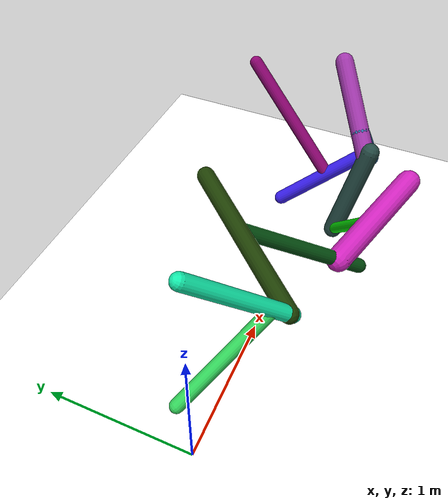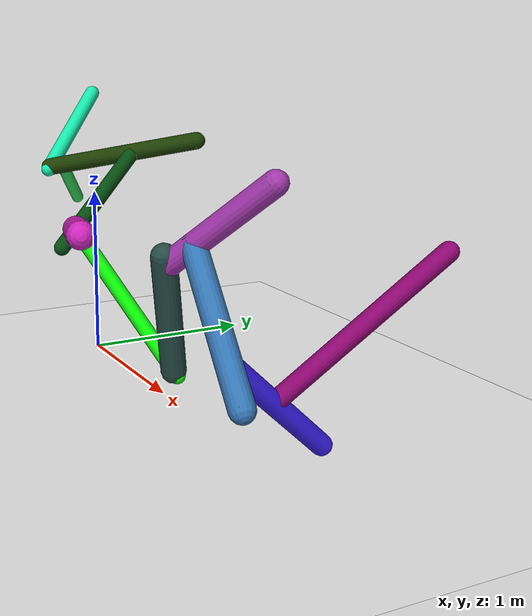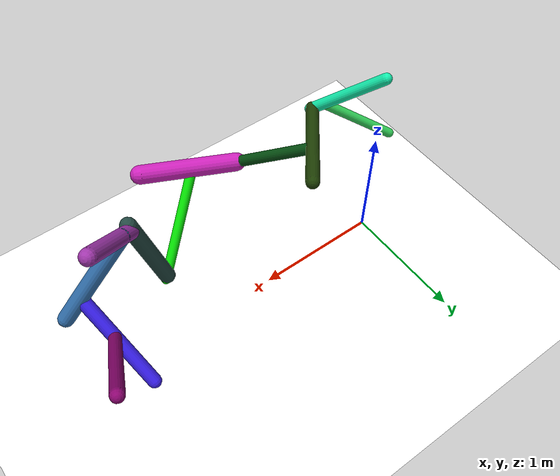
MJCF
<mujoco model="morphology">
  <option timestep="0.01"/>
  <default>
    <default class="/"/>
    <default class="0/"/>
    <default class="0/1/"/>
    <default class="0/2/"/>
    <default class="0/2/3/"/>
    <default class="0/2/3/4/"/>
    <default class="0/2/3/4/5/"/>
    <default class="0/2/3/4/5/6/"/>
    <default class="0/2/3/4/5/6/7/"/>
    <default class="0/2/3/4/5/6/7/8/"/>
    <default class="0/2/3/4/5/6/7/8/9/"/>
    <default class="0/2/3/4/5/6/7/8/9/10/"/>
  </default>
  <asset>
    <texture name="texplane" type="2d" builtin="checker" rgb1="0.10000000000000001 0.20000000000000001 0.29999999999999999" rgb2="0.20000000000000001 0.29999999999999999 0.40000000000000002" width="300" height="300"/>
    <material name="MatPlane" class="/" texture="texplane" texrepeat="20 20" specular="1" shininess="1" reflectance="0.5"/>
  </asset>
  <worldbody>
    <light name="//unnamed_light_0" class="/" directional="true" pos="0 0 1.5" dir="0 0 -1.3" cutoff="100" exponent="1" diffuse="1 1 1" specular="0.10000000000000001 0.10000000000000001 0.10000000000000001"/>
    <geom name="ground" class="/" type="plane" size="15 15 0.5" material="MatPlane" rgba="1 1 1 1"/>
    <site name="body" class="/" size="9.9999999999999995e-07 9.9999999999999995e-07 9.9999999999999995e-07" pos="0 0 1.6073202848434449"/>
    <body pos="0 0 1.6073202848434449" name="0/">
      <freejoint name="0/"/>
      <geom name="0/geom" class="0/" type="capsule" contype="1" conaffinity="1" condim="3" size="0.042152283195916053" rgba="0.067711402251585784 0.90387860364393058 0.65809853041843502 1" friction="0.59999999999999998 0.10000000000000001 0.10000000000000001" fromto="0 0 0 0.32103606062522383 -0.39954302727907631 -0.39944408695449807"/>
      <site name="0/end0" class="0/" size="0.0050000000000000001" pos="0.32103606062522383 -0.39954302727907631 -0.39944408695449807"/>
      <site name="0/attach1" class="0/" size="9.9999999999999995e-07 9.9999999999999995e-07 9.9999999999999995e-07" pos="0.26099934440480271 -0.32482478129796677 -0.32474434373029964"/>
      <body pos="0.26099934440480271 -0.32482478129796677 -0.32474434373029964" name="0/1/">
        <geom name="0/1/geom" class="0/1/" type="capsule" contype="1" conaffinity="1" condim="3" size="0.035849112331456559" rgba="0.19802733607194822 0.8195259579622618 0.34985083165791875 1" friction="0.59999999999999998 0.10000000000000001 0.10000000000000001" fromto="0 0 0 -0.44352246969968767 0.27974017256451145 -0.33843262880891828"/>
        <site name="0/1/end1" class="0/1/" size="0.0050000000000000001" pos="-0.44352246969968767 0.27974017256451145 -0.33843262880891828"/>
      </body>
      <site name="0/attach2" class="0/" size="9.9999999999999995e-07 9.9999999999999995e-07 9.9999999999999995e-07" pos="0.31211410992847555 -0.38843928029292424 -0.38834308963047454"/>
      <body pos="0.31211410992847555 -0.38843928029292424 -0.38834308963047454" name="0/2/">
        <joint name="0/2/joint/" class="0/" type="hinge" axis="0 0 1" limited="true" range="-64.752770422358878 64.752770422358878"/>
        <geom name="0/2/geom" class="0/2/" type="capsule" contype="1" conaffinity="1" condim="3" size="0.048369241339595484" rgba="0.11276667369459148 0.24069578034386918 0.015230491544508507 1" friction="0.59999999999999998 0.10000000000000001 0.10000000000000001" fromto="0 0 0 0.54333477647509532 0.67218681917600387 0.17044270597771893"/>
        <site name="0/2/end2" class="0/2/" size="0.0050000000000000001" pos="0.54333477647509532 0.67218681917600387 0.17044270597771893"/>
        <site name="0/2/attach3" class="0/2/" size="9.9999999999999995e-07 9.9999999999999995e-07 9.9999999999999995e-07" pos="0.31227451537561596 0.38633053190859917 0.097959703138826126"/>
        <body pos="0.31227451537561596 0.38633053190859917 0.097959703138826126" name="0/2/3/">
          <joint name="0/2/3/joint/" class="0/2/" type="hinge" axis="-0.78715918327383971 0.59783051150702704 0.15158858696784616" limited="true" range="-49.288847248643407 49.288847248643407"/>
          <geom name="0/2/3/geom" class="0/2/3/" type="capsule" contype="1" conaffinity="1" condim="3" size="0.041885905313120309" rgba="0.018387395828989628 0.29682584677491686 0.063517226576262131 1" friction="0.59999999999999998 0.10000000000000001 0.10000000000000001" fromto="0 0 0 0.39610654205094353 -0.57498552985807438 -0.41838956538614824"/>
          <site name="0/2/3/end3" class="0/2/3/" size="0.0050000000000000001" pos="0.39610654205094353 -0.57498552985807438 -0.41838956538614824"/>
          <site name="0/2/3/attach4" class="0/2/3/" size="9.9999999999999995e-07 9.9999999999999995e-07 9.9999999999999995e-07" pos="0.32358896772789808 -0.46971951814247909 -0.34179250580015796"/>
          <body pos="0.32358896772789808 -0.46971951814247909 -0.34179250580015796" name="0/2/3/4/">
            <joint name="0/2/3/4/joint/" class="0/2/3/" type="hinge" axis="0.87360755388706335 0.39348507776081709 0.28632033698468756" limited="true" range="-43.341483135303697 43.341483135303697"/>
            <geom name="0/2/3/4/geom" class="0/2/3/4/" type="capsule" contype="1" conaffinity="1" condim="3" size="0.069266276170271812" rgba="0.79782051156481704 0.13666912793202457 0.72802794084139832 1" friction="0.59999999999999998 0.10000000000000001 0.10000000000000001" fromto="0 0 0 0.67241602277926305 -0.21990866381525453 0.10965620499203066"/>
            <site name="0/2/3/4/end4" class="0/2/3/4/" size="0.0050000000000000001" pos="0.67241602277926305 -0.21990866381525453 0.10965620499203066"/>
            <site name="0/2/3/4/attach5" class="0/2/3/4/" size="9.9999999999999995e-07 9.9999999999999995e-07 9.9999999999999995e-07" pos="0.31416187243172405 -0.10274430597683475 0.051232864055891635"/>
            <body pos="0.31416187243172405 -0.10274430597683475 0.051232864055891635" name="0/2/3/4/5/">
              <joint name="0/2/3/4/5/joint/" class="0/2/3/4/" type="hinge" axis="0.34324435050902635 0.84054259856987323 -0.41913178814430369" limited="true" range="-47.55291626957699 47.55291626957699"/>
              <geom name="0/2/3/4/5/geom" class="0/2/3/4/5/" type="capsule" contype="1" conaffinity="1" condim="3" size="0.038066373067114731" rgba="0.034829905820296769 0.93381374587725241 0.023386998374956725 1" friction="0.59999999999999998 0.10000000000000001 0.10000000000000001" fromto="0 0 0 0.49517195155460847 0.30404812653752478 -0.64621030113385036"/>
              <site name="0/2/3/4/5/end5" class="0/2/3/4/5/" size="0.0050000000000000001" pos="0.49517195155460847 0.30404812653752478 -0.64621030113385036"/>
              <site name="0/2/3/4/5/attach6" class="0/2/3/4/5/" size="9.9999999999999995e-07 9.9999999999999995e-07 9.9999999999999995e-07" pos="0.47604960225733245 0.29230651948450143 -0.62125521420094953"/>
              <body pos="0.47604960225733245 0.29230651948450143 -0.62125521420094953" name="0/2/3/4/5/6/">
                <joint name="0/2/3/4/5/6/joint/" class="0/2/3/4/5/" type="hinge" axis="5.5511151231257827e-17 0.90484612613709614 0.42573875559395613" limited="true" range="-38.010132102738226 38.010132102738226"/>
                <geom name="0/2/3/4/5/6/geom" class="0/2/3/4/5/6/" type="capsule" contype="1" conaffinity="1" condim="3" size="0.062596308716752661" rgba="0.14256441598958247 0.28470192951750839 0.26138165126799573 1" friction="0.59999999999999998 0.10000000000000001 0.10000000000000001" fromto="0 0 0 0.15737318375093401 -0.11896960603777207 0.60583672588850801"/>
                <site name="0/2/3/4/5/6/end6" class="0/2/3/4/5/6/" size="0.0050000000000000001" pos="0.15737318375093401 -0.11896960603777207 0.60583672588850801"/>
                <site name="0/2/3/4/5/6/attach7" class="0/2/3/4/5/6/" size="9.9999999999999995e-07 9.9999999999999995e-07 9.9999999999999995e-07" pos="0.14350008149068971 -0.10848193926326549 0.5524296926765172"/>
                <body pos="0.14350008149068971 -0.10848193926326549 0.5524296926765172" name="0/2/3/4/5/6/7/">
                  <joint name="0/2/3/4/5/6/7/joint/" class="0/2/3/4/5/6/" type="hinge" axis="-1.6653345369377348e-16 0.98125924553911958 0.19269222362097982" limited="true" range="-69.435881343625709 69.435881343625709"/>
                  <geom name="0/2/3/4/5/6/7/geom" class="0/2/3/4/5/6/7/" type="capsule" contype="1" conaffinity="1" condim="3" size="0.060740490321301167" rgba="0.61771010686985395 0.20771960563905689 0.6607345655776512 1" friction="0.59999999999999998 0.10000000000000001 0.10000000000000001" fromto="0 0 0 0.4176923060663873 0.32746616222338365 0.41851019483649443"/>
                  <site name="0/2/3/4/5/6/7/end7" class="0/2/3/4/5/6/7/" size="0.0050000000000000001" pos="0.4176923060663873 0.32746616222338365 0.41851019483649443"/>
                  <site name="0/2/3/4/5/6/7/attach8" class="0/2/3/4/5/6/7/" size="9.9999999999999995e-07 9.9999999999999995e-07 9.9999999999999995e-07" pos="0.11384004221157454 0.089249337823443867 0.11406295388785179"/>
                  <body pos="0.11384004221157454 0.089249337823443867 0.11406295388785179" name="0/2/3/4/5/6/7/8/">
                    <geom name="0/2/3/4/5/6/7/8/geom" class="0/2/3/4/5/6/7/8/" type="capsule" contype="1" conaffinity="1" condim="3" size="0.061522945973001147" rgba="0.19999110391830788 0.44625956864112692 0.68749998281782876 1" friction="0.59999999999999998 0.10000000000000001 0.10000000000000001" fromto="0 0 0 0.53079031746341099 -0.041105336968303763 -0.58903361405607857"/>
                    <site name="0/2/3/4/5/6/7/8/end8" class="0/2/3/4/5/6/7/8/" size="0.0050000000000000001" pos="0.53079031746341099 -0.041105336968303763 -0.58903361405607857"/>
                    <site name="0/2/3/4/5/6/7/8/attach9" class="0/2/3/4/5/6/7/8/" size="9.9999999999999995e-07 9.9999999999999995e-07 9.9999999999999995e-07" pos="0.39025415477558151 -0.030221969029110334 -0.43307650427083549"/>
                    <body pos="0.39025415477558151 -0.030221969029110334 -0.43307650427083549" name="0/2/3/4/5/6/7/8/9/">
                      <joint name="0/2/3/4/5/6/7/8/9/joint/" class="0/2/3/4/5/6/7/8/" type="hinge" axis="0.74368806275954169 0.046539534790680737 0.66690489352712579" limited="true" range="-43.18817009867027 43.18817009867027"/>
                      <geom name="0/2/3/4/5/6/7/8/9/geom" class="0/2/3/4/5/6/7/8/9/" type="capsule" contype="1" conaffinity="1" condim="3" size="0.053025878518162393" rgba="0.23088543947500229 0.12538104350732782 0.94819072125328707 1" friction="0.59999999999999998 0.10000000000000001 0.10000000000000001" fromto="0 0 0 -0.16873861587101691 0.58761457872395195 -0.53853817375487245"/>
                      <site name="0/2/3/4/5/6/7/8/9/end9" class="0/2/3/4/5/6/7/8/9/" size="0.0050000000000000001" pos="-0.16873861587101691 0.58761457872395195 -0.53853817375487245"/>
                      <site name="0/2/3/4/5/6/7/8/9/attach10" class="0/2/3/4/5/6/7/8/9/" size="9.9999999999999995e-07 9.9999999999999995e-07 9.9999999999999995e-07" pos="-0.076919809253174515 0.26786518946191284 -0.2454936197440559"/>
                      <body pos="-0.076919809253174515 0.26786518946191284 -0.2454936197440559" name="0/2/3/4/5/6/7/8/9/10/">
                        <geom name="0/2/3/4/5/6/7/8/9/10/geom" class="0/2/3/4/5/6/7/8/9/10/" type="capsule" contype="1" conaffinity="1" condim="3" size="0.048252313013538196" rgba="0.54220571686304297 0.015221909014006108 0.4339589650063177 1" friction="0.59999999999999998 0.10000000000000001 0.10000000000000001" fromto="0 0 0 0.26055409401095009 0.72584795832841253 0.66534693612900897"/>
                        <site name="0/2/3/4/5/6/7/8/9/10/end10" class="0/2/3/4/5/6/7/8/9/10/" size="0.0050000000000000001" pos="0.26055409401095009 0.72584795832841253 0.66534693612900897"/>
                      </body>
                    </body>
                  </body>
                </body>
              </body>
            </body>
          </body>
        </body>
      </body>
      <camera name="0/iso" class="0/" mode="trackcom" pos="-2.2999999999999998 -2.2999999999999998 1" xyaxes="0.45000000000000001 -0.45000000000000001 0 0.29999999999999999 0.14999999999999999 0.93999999999999995"/>
    </body>
  </worldbody>
  <actuator>
    <motor name="0/2/motor" class="0/2/" ctrllimited="true" ctrlrange="-1 1" gear="87" joint="0/2/joint/"/>
    <motor name="0/2/3/motor" class="0/2/3/" ctrllimited="true" ctrlrange="-1 1" gear="73" joint="0/2/3/joint/"/>
    <motor name="0/2/3/4/motor" class="0/2/3/4/" ctrllimited="true" ctrlrange="-1 1" gear="61" joint="0/2/3/4/joint/"/>
    <motor name="0/2/3/4/5/motor" class="0/2/3/4/5/" ctrllimited="true" ctrlrange="-1 1" gear="90" joint="0/2/3/4/5/joint/"/>
    <motor name="0/2/3/4/5/6/motor" class="0/2/3/4/5/6/" ctrllimited="true" ctrlrange="-1 1" gear="97" joint="0/2/3/4/5/6/joint/"/>
    <motor name="0/2/3/4/5/6/7/motor" class="0/2/3/4/5/6/7/" ctrllimited="true" ctrlrange="-1 1" gear="90" joint="0/2/3/4/5/6/7/joint/"/>
    <motor name="0/2/3/4/5/6/7/8/9/motor" class="0/2/3/4/5/6/7/8/9/" ctrllimited="true" ctrlrange="-1 1" gear="79" joint="0/2/3/4/5/6/7/8/9/joint/"/>
  </actuator>
  <sensor>
    <subtreelinvel name="velocity" body="0/"/>
  </sensor>
</mujoco>
